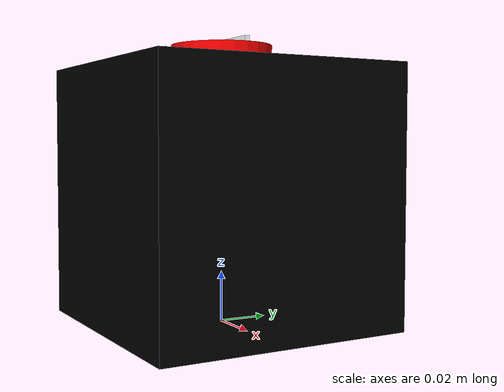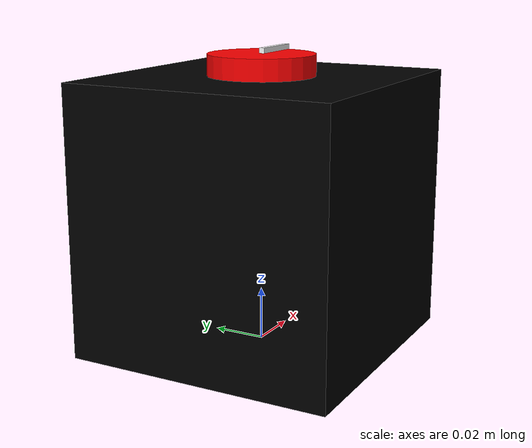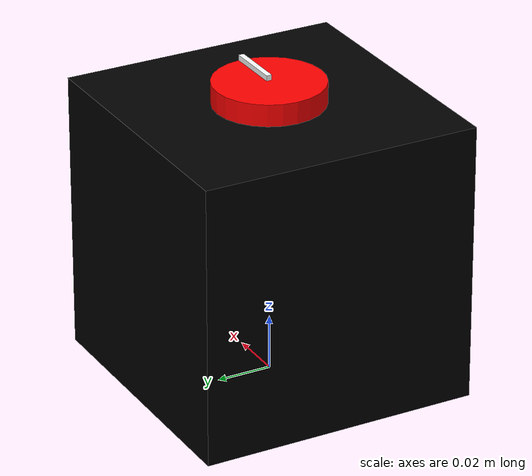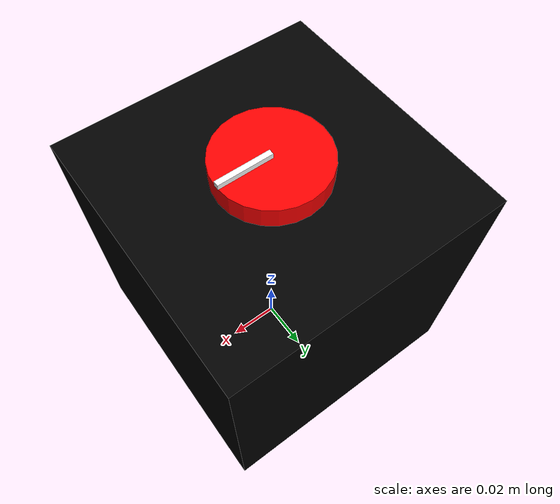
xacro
<?xml version="1.0"?>
<robot xmlns:xacro="http://www.ros.org/wiki/xacro" name="controlled_qube">
  <!-- Define arguments -->
  <xacro:arg name="baud_rate" default="115200"/>
  <xacro:arg name="device" default="/dev/ttyACM1"/>
  <xacro:arg name="simulation" default="false"/>
    <!-- Include the Qube macro -->
    <xacro:include filename="$(find qube_description)/urdf/qube.urdf.xacro" />

    <!-- Include the ros2_control macro -->
    <xacro:include filename="$(find qube_driver)/ros2_control/qube_driver.ros2_control.xacro" />

    <!-- Add ros2_control to the robot -->
    <xacro:qube_driver_ros2_control
        name="qube_driver"
        prefix=""
        baud_rate="$(arg baud_rate)"
        device="$(arg device)"
        simulation="$(arg simulation)" />
</robot>

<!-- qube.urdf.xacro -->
<robot xmlns:xacro="http://www.ros.org/wiki/xacro" name="qube">
    <!-- Include the Qube macro -->
    <xacro:include filename="$(find qube_description)/urdf/qube.macro.xacro" />
    <link name="world">
        <!-- link that serves as the root of the robot -->
    </link>

    <!-- Call the Qube macro -->
    <xacro:qube prefix="" />

    <!-- Connect the base_link to the world -->
    <joint name="world_to_base_joint" type="fixed">
        <parent link="world" />
        <child link="base_link" />
        <origin xyz="0 0 0" rpy="0 0 0" />
    </joint>
</robot>

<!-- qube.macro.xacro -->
<robot xmlns:xacro="http://www.ros.org/wiki/xacro">
  <!-- Define properties for dimensions -->

  <xacro:property name="stator_size" value="0.102" />
  <xacro:property name="rotor_height" value="0.008" />
  <xacro:property name="rotor_radius" value="0.020" />
  <xacro:property name="angle_length" value="0.020" />
  <xacro:property name="angle_width" value="0.002" />
  <xacro:property name="angle_height" value="0.002" />

  <!-- Define the qube model macro -->
  <xacro:macro name="qube" params="prefix">
    <!-- Base link - no geometry -->
    <link name="${prefix}base_link"/>

    <!-- Stator link - black cube -->
    <link name="${prefix}stator_link">
      <visual>
        <geometry>
          <box size="${stator_size} ${stator_size} ${stator_size}"/>
        </geometry>
        <material name="black">
          <color rgba="0 0 0 1"/>
        </material>
      </visual>
      <collision>
        <geometry>
          <box size="${stator_size} ${stator_size} ${stator_size}"/>
        </geometry>
      </collision>
      <inertial>
        <mass value="0.5"/>
        <inertia ixx="0.001" ixy="0" ixz="0" iyy="0.001" iyz="0" izz="0.001"/>
      </inertial>
    </link>

    <!-- Rotor link - smaller red cylinder -->
    <link name="${prefix}rotary_link">
      <visual>
        <geometry>
          <cylinder length="${rotor_height}" radius="${rotor_radius}"/>
        </geometry>
        <material name="red">
          <color rgba="1 0 0 1"/>
        </material>
      </visual>
      <collision>
        <geometry>
          <cylinder length="${rotor_height}" radius="${rotor_radius}"/>
        </geometry>
      </collision>
      <inertial>
        <mass value="0.1"/>
        <inertia ixx="0.0001" ixy="0" ixz="0" iyy="0.0001" iyz="0" izz="0.0002"/>
      </inertial>
    </link>

    <!-- Angle link - white box -->
    <link name="${prefix}indicator_link">
      <visual>
        <geometry>
          <box size="${angle_length} ${angle_width} ${angle_height}"/>
        </geometry>
        <material name="white">
          <color rgba="1 1 1 1"/>
        </material>
      </visual>
      <collision>
        <geometry>
          <box size="${angle_length} ${angle_width} ${angle_height}"/>
        </geometry>
      </collision>
      <inertial>
        <mass value="0.01"/>
        <inertia ixx="0.00001" ixy="0" ixz="0" iyy="0.00001" iyz="0" izz="0.00001"/>
      </inertial>
    </link>

    <!-- Fixed joint connecting base_link to stator_link -->
    <joint name="${prefix}stator_joint" type="fixed">
      <parent link="${prefix}base_link"/>
      <child link="${prefix}stator_link"/>
      <origin xyz="0 0 ${stator_size/2}" rpy="0 0 0"/>
    </joint>
    <!-- Revolute joint connecting stator_link to rotor_link -->
    <joint name="${prefix}motor_joint" type="continuous">
      <parent link="${prefix}stator_link"/>
      <child link="${prefix}rotary_link"/>
      <origin xyz="0 0 ${stator_size/2 + rotor_height/2}" rpy="0 0 0"/>
      <axis xyz="0 0 1"/>  <!-- Rotate around Z axis -->
    </joint>

    <!-- joint connecting rotor_link to indicator_link -->
    <joint name="${prefix}indicator_joint" type="fixed">
      <parent link="${prefix}rotary_link"/>
      <child link="${prefix}indicator_link"/>
      <origin xyz="${angle_length/2} 0 ${rotor_height/2 + 0.001}" rpy="0 0 0"/>
    </joint>
  </xacro:macro>
</robot>
